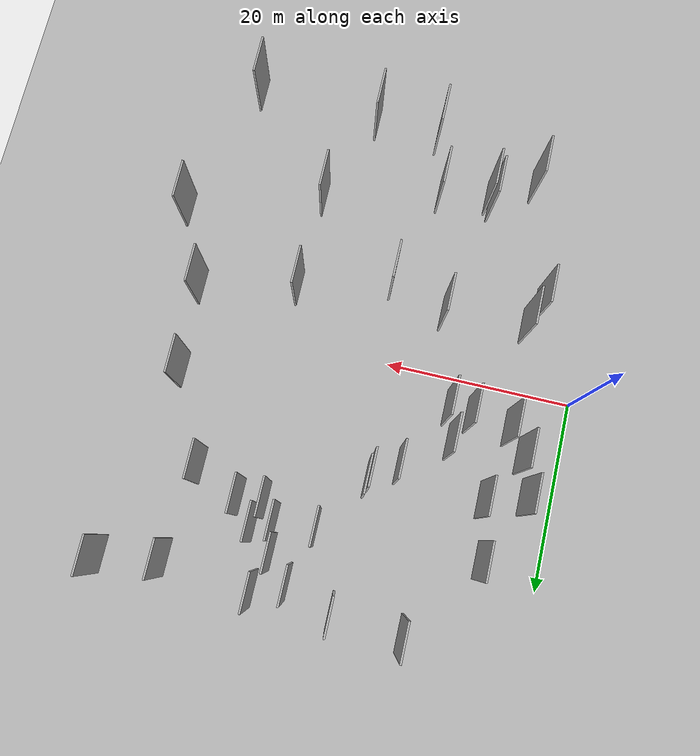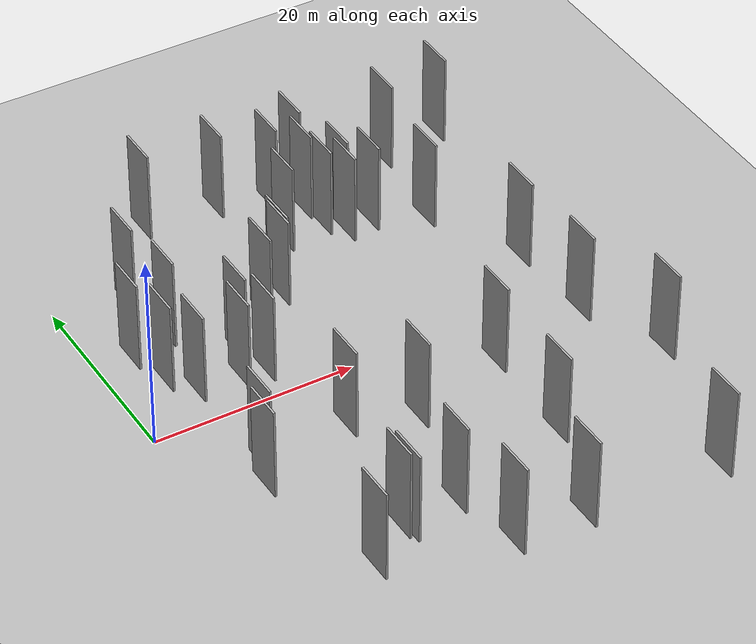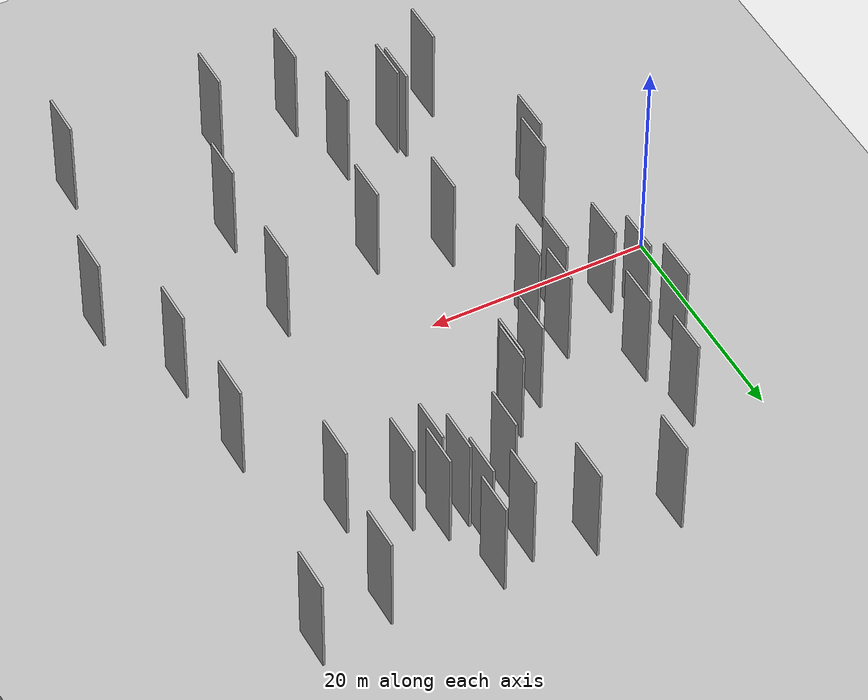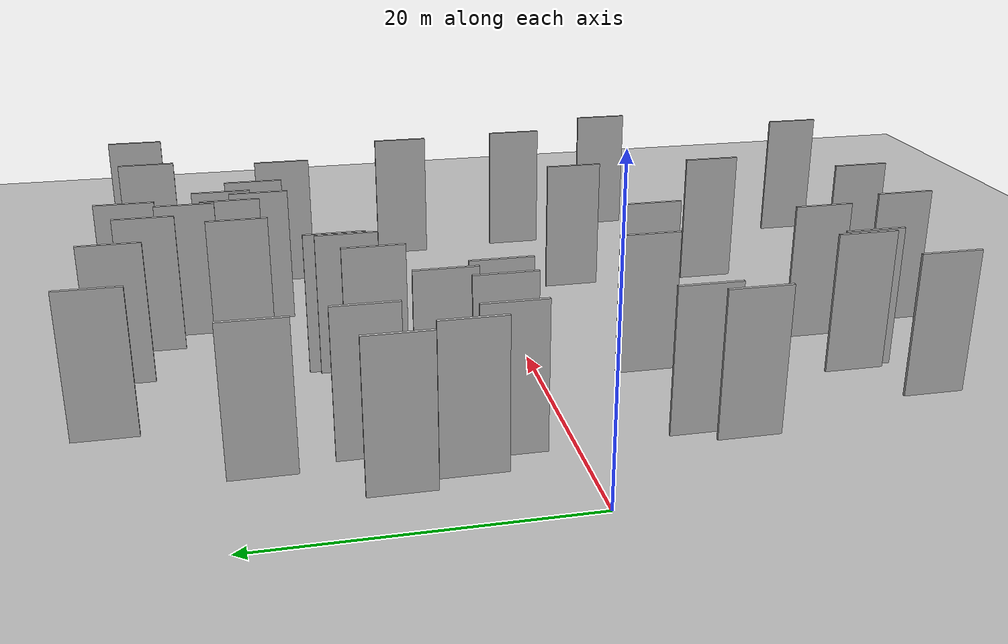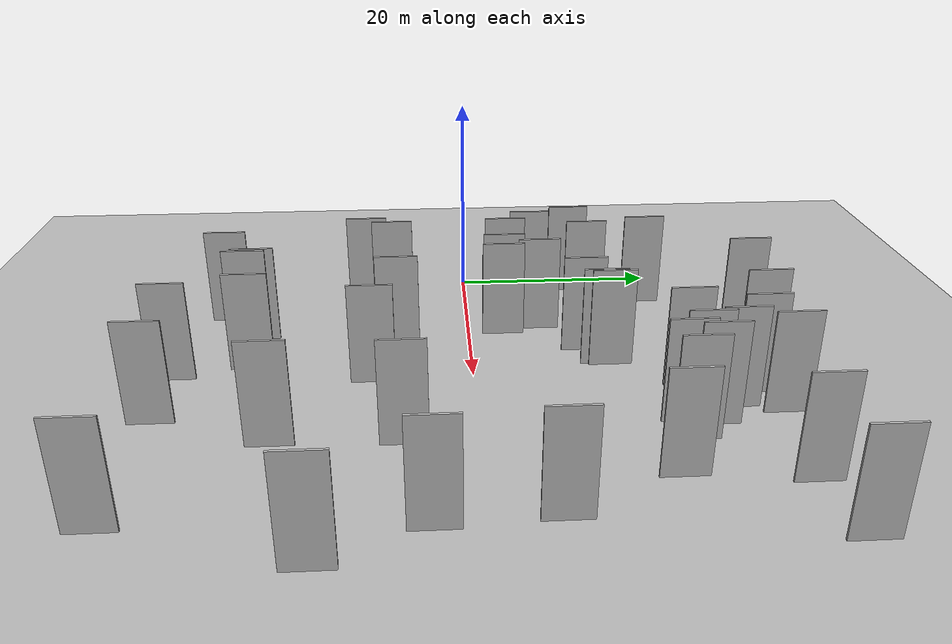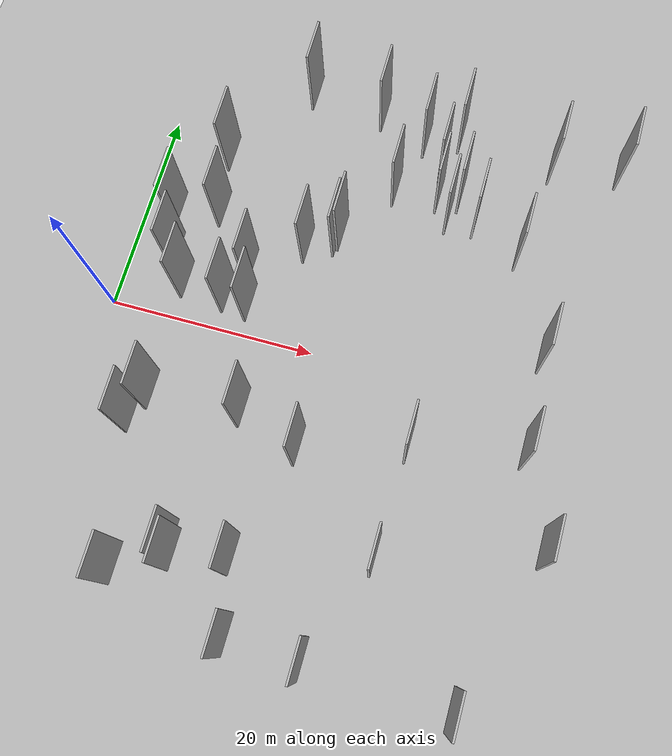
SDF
<?xml version="1.0" encoding="utf-8"?>

<sdf version="1.6">

   <world name="default">

      <gui fullscreen="0">

         <camera name="user_camera">

            <pose>-15 0 4.57585 0 0 0</pose>

            <view_controller>orbit</view_controller>

         </camera>

      </gui>

      <scene>

         <sky>

           <clouds>

             <speed>12</speed>

           </clouds>

         </sky>

         <ambient>0.4 0.4 0.4 1</ambient>

         <background>0.7 0.7 0.7 1</background>

         <shadows>1</shadows>

      </scene>

      <gravity>0 0 -9.8066</gravity>

      <magnetic_field>6e-06 2.3e-05 -4.2e-05</magnetic_field>

      <physics default="0" name="default_physics" type="ode">

         <ode>

            <solver>

               <type>quick</type>

               <iters>10</iters>

               <sor>1.0</sor>

               <use_dynamic_moi_rescaling>0</use_dynamic_moi_rescaling>

            </solver>

            <constraints>

               <cfm>0</cfm>

               <erp>0.2</erp>

               <contact_max_correcting_vel>100</contact_max_correcting_vel>

               <contact_surface_layer>0.001</contact_surface_layer>

            </constraints>

         </ode>

         <max_step_size>0.004</max_step_size>

         <real_time_factor>1</real_time_factor>

         <real_time_update_rate>250</real_time_update_rate>

      </physics>

      <light name="sun" type="directional">

         <cast_shadows>1</cast_shadows>

         <pose>0 0 10 0 0 0</pose>

         <diffuse>0.8 0.8 0.8 1</diffuse>

         <specular>0.2 0.2 0.2 1</specular>

         <attenuation>

            <range>1000</range>

            <constant>0.9</constant>

            <linear>0.01</linear>

            <quadratic>0.001</quadratic>

         </attenuation>

         <direction>-0.5 0.1 -0.9</direction>

      </light>

      <include>

         <name>ground_plane_1</name>

         <uri>model://HANNAS_ground_plane</uri>

         <pose>0 0 0  0 0 0</pose>

      </include>

      <include>

         <name>ground_plane_2</name>

         <uri>model://HANNAS_ground_plane</uri>

         <pose>100 0 0  0 0 0</pose>

      </include>

      <model name="HANNAS_wall_1">

         <static>1</static>

         <pose frame="">27.8386 19.0974 0.0 0.000000 0.000000 1.570796</pose>

         <link name="link">

            <pose frame="">0 0 5.00 0 0 0</pose>

            <collision name="collision">

               <geometry>

                  <box>

                     <size>4.00 0.2 10.00</size>

                  </box>

               </geometry>

               <max_contacts>10</max_contacts>

               <surface>

                  <contact>

                     <ode/>

                  </contact>

                  <bounce/>

                  <friction>

                     <torsional>

                        <ode/>

                     </torsional>

                     <ode/>

                  </friction>

               </surface>

            </collision>

            <visual name="visual">

               <cast_shadows>0</cast_shadows>

               <geometry>

                  <box>

                     <size>4.00 0.2 10.00</size>

                  </box>

               </geometry>

               <material>

                  <script>

                     <uri>model://HANNAS_wall/materials/scripts</uri>

                     <uri>model://HANNAS_wall/materials/textures</uri>

                     <name>vrc/HANNAS_wall</name>

                  </script>

               </material>

            </visual>

            <self_collide>0</self_collide>

            <enable_wind>0</enable_wind>

            <kinematic>0</kinematic>

         </link>

      </model>

      <model name="HANNAS_wall_2">

         <static>1</static>

         <pose frame="">31.9971 17.4244 0.0 0.000000 0.000000 1.570796</pose>

         <link name="link">

            <pose frame="">0 0 5.00 0 0 0</pose>

            <collision name="collision">

               <geometry>

                  <box>

                     <size>4.00 0.2 10.00</size>

                  </box>

               </geometry>

               <max_contacts>10</max_contacts>

               <surface>

                  <contact>

                     <ode/>

                  </contact>

                  <bounce/>

                  <friction>

                     <torsional>

                        <ode/>

                     </torsional>

                     <ode/>

                  </friction>

               </surface>

            </collision>

            <visual name="visual">

               <cast_shadows>0</cast_shadows>

               <geometry>

                  <box>

                     <size>4.00 0.2 10.00</size>

                  </box>

               </geometry>

               <material>

                  <script>

                     <uri>model://HANNAS_wall/materials/scripts</uri>

                     <uri>model://HANNAS_wall/materials/textures</uri>

                     <name>vrc/HANNAS_wall</name>

                  </script>

               </material>

            </visual>

            <self_collide>0</self_collide>

            <enable_wind>0</enable_wind>

            <kinematic>0</kinematic>

         </link>

      </model>

      <model name="HANNAS_wall_3">

         <static>1</static>

         <pose frame="">6.2617 3.9790 0.0 0.000000 0.000000 1.570796</pose>

         <link name="link">

            <pose frame="">0 0 5.00 0 0 0</pose>

            <collision name="collision">

               <geometry>

                  <box>

                     <size>4.00 0.2 10.00</size>

                  </box>

               </geometry>

               <max_contacts>10</max_contacts>

               <surface>

                  <contact>

                     <ode/>

                  </contact>

                  <bounce/>

                  <friction>

                     <torsional>

                        <ode/>

                     </torsional>

                     <ode/>

                  </friction>

               </surface>

            </collision>

            <visual name="visual">

               <cast_shadows>0</cast_shadows>

               <geometry>

                  <box>

                     <size>4.00 0.2 10.00</size>

                  </box>

               </geometry>

               <material>

                  <script>

                     <uri>model://HANNAS_wall/materials/scripts</uri>

                     <uri>model://HANNAS_wall/materials/textures</uri>

                     <name>vrc/HANNAS_wall</name>

                  </script>

               </material>

            </visual>

            <self_collide>0</self_collide>

            <enable_wind>0</enable_wind>

            <kinematic>0</kinematic>

         </link>

      </model>

      <model name="HANNAS_wall_4">

         <static>1</static>

         <pose frame="">7.5539 12.0674 0.0 0.000000 0.000000 1.570796</pose>

         <link name="link">

            <pose frame="">0 0 5.00 0 0 0</pose>

            <collision name="collision">

               <geometry>

                  <box>

                     <size>4.00 0.2 10.00</size>

                  </box>

               </geometry>

               <max_contacts>10</max_contacts>

               <surface>

                  <contact>

                     <ode/>

                  </contact>

                  <bounce/>

                  <friction>

                     <torsional>

                        <ode/>

                     </torsional>

                     <ode/>

                  </friction>

               </surface>

            </collision>

            <visual name="visual">

               <cast_shadows>0</cast_shadows>

               <geometry>

                  <box>

                     <size>4.00 0.2 10.00</size>

                  </box>

               </geometry>

               <material>

                  <script>

                     <uri>model://HANNAS_wall/materials/scripts</uri>

                     <uri>model://HANNAS_wall/materials/textures</uri>

                     <name>vrc/HANNAS_wall</name>

                  </script>

               </material>

            </visual>

            <self_collide>0</self_collide>

            <enable_wind>0</enable_wind>

            <kinematic>0</kinematic>

         </link>

      </model>

      <model name="HANNAS_wall_5">

         <static>1</static>

         <pose frame="">16.6574 10.5608 0.0 0.000000 0.000000 1.570796</pose>

         <link name="link">

            <pose frame="">0 0 5.00 0 0 0</pose>

            <collision name="collision">

               <geometry>

                  <box>

                     <size>4.00 0.2 10.00</size>

                  </box>

               </geometry>

               <max_contacts>10</max_contacts>

               <surface>

                  <contact>

                     <ode/>

                  </contact>

                  <bounce/>

                  <friction>

                     <torsional>

                        <ode/>

                     </torsional>

                     <ode/>

                  </friction>

               </surface>

            </collision>

            <visual name="visual">

               <cast_shadows>0</cast_shadows>

               <geometry>

                  <box>

                     <size>4.00 0.2 10.00</size>

                  </box>

               </geometry>

               <material>

                  <script>

                     <uri>model://HANNAS_wall/materials/scripts</uri>

                     <uri>model://HANNAS_wall/materials/textures</uri>

                     <name>vrc/HANNAS_wall</name>

                  </script>

               </material>

            </visual>

            <self_collide>0</self_collide>

            <enable_wind>0</enable_wind>

            <kinematic>0</kinematic>

         </link>

      </model>

      <model name="HANNAS_wall_6">

         <static>1</static>

         <pose frame="">40.6920 -27.8204 0.0 0.000000 0.000000 1.570796</pose>

         <link name="link">

            <pose frame="">0 0 5.00 0 0 0</pose>

            <collision name="collision">

               <geometry>

                  <box>

                     <size>4.00 0.2 10.00</size>

                  </box>

               </geometry>

               <max_contacts>10</max_contacts>

               <surface>

                  <contact>

                     <ode/>

                  </contact>

                  <bounce/>

                  <friction>

                     <torsional>

                        <ode/>

                     </torsional>

                     <ode/>

                  </friction>

               </surface>

            </collision>

            <visual name="visual">

               <cast_shadows>0</cast_shadows>

               <geometry>

                  <box>

                     <size>4.00 0.2 10.00</size>

                  </box>

               </geometry>

               <material>

                  <script>

                     <uri>model://HANNAS_wall/materials/scripts</uri>

                     <uri>model://HANNAS_wall/materials/textures</uri>

                     <name>vrc/HANNAS_wall</name>

                  </script>

               </material>

            </visual>

            <self_collide>0</self_collide>

            <enable_wind>0</enable_wind>

            <kinematic>0</kinematic>

         </link>

      </model>

      <model name="HANNAS_wall_7">

         <static>1</static>

         <pose frame="">21.4658 -9.0196 0.0 0.000000 0.000000 1.570796</pose>

         <link name="link">

            <pose frame="">0 0 5.00 0 0 0</pose>

            <collision name="collision">

               <geometry>

                  <box>

                     <size>4.00 0.2 10.00</size>

                  </box>

               </geometry>

               <max_contacts>10</max_contacts>

               <surface>

                  <contact>

                     <ode/>

                  </contact>

                  <bounce/>

                  <friction>

                     <torsional>

                        <ode/>

                     </torsional>

                     <ode/>

                  </friction>

               </surface>

            </collision>

            <visual name="visual">

               <cast_shadows>0</cast_shadows>

               <geometry>

                  <box>

                     <size>4.00 0.2 10.00</size>

                  </box>

               </geometry>

               <material>

                  <script>

                     <uri>model://HANNAS_wall/materials/scripts</uri>

                     <uri>model://HANNAS_wall/materials/textures</uri>

                     <name>vrc/HANNAS_wall</name>

                  </script>

               </material>

            </visual>

            <self_collide>0</self_collide>

            <enable_wind>0</enable_wind>

            <kinematic>0</kinematic>

         </link>

      </model>

      <model name="HANNAS_wall_8">

         <static>1</static>

         <pose frame="">36.7858 15.1827 0.0 0.000000 0.000000 1.570796</pose>

         <link name="link">

            <pose frame="">0 0 5.00 0 0 0</pose>

            <collision name="collision">

               <geometry>

                  <box>

                     <size>4.00 0.2 10.00</size>

                  </box>

               </geometry>

               <max_contacts>10</max_contacts>

               <surface>

                  <contact>

                     <ode/>

                  </contact>

                  <bounce/>

                  <friction>

                     <torsional>

                        <ode/>

                     </torsional>

                     <ode/>

                  </friction>

               </surface>

            </collision>

            <visual name="visual">

               <cast_shadows>0</cast_shadows>

               <geometry>

                  <box>

                     <size>4.00 0.2 10.00</size>

                  </box>

               </geometry>

               <material>

                  <script>

                     <uri>model://HANNAS_wall/materials/scripts</uri>

                     <uri>model://HANNAS_wall/materials/textures</uri>

                     <name>vrc/HANNAS_wall</name>

                  </script>

               </material>

            </visual>

            <self_collide>0</self_collide>

            <enable_wind>0</enable_wind>

            <kinematic>0</kinematic>

         </link>

      </model>

      <model name="HANNAS_wall_9">

         <static>1</static>

         <pose frame="">31.3133 -6.1245 0.0 0.000000 0.000000 1.570796</pose>

         <link name="link">

            <pose frame="">0 0 5.00 0 0 0</pose>

            <collision name="collision">

               <geometry>

                  <box>

                     <size>4.00 0.2 10.00</size>

                  </box>

               </geometry>

               <max_contacts>10</max_contacts>

               <surface>

                  <contact>

                     <ode/>

                  </contact>

                  <bounce/>

                  <friction>

                     <torsional>

                        <ode/>

                     </torsional>

                     <ode/>

                  </friction>

               </surface>

            </collision>

            <visual name="visual">

               <cast_shadows>0</cast_shadows>

               <geometry>

                  <box>

                     <size>4.00 0.2 10.00</size>

                  </box>

               </geometry>

               <material>

                  <script>

                     <uri>model://HANNAS_wall/materials/scripts</uri>

                     <uri>model://HANNAS_wall/materials/textures</uri>

                     <name>vrc/HANNAS_wall</name>

                  </script>

               </material>

            </visual>

            <self_collide>0</self_collide>

            <enable_wind>0</enable_wind>

            <kinematic>0</kinematic>

         </link>

      </model>

      <model name="HANNAS_wall_10">

         <static>1</static>

         <pose frame="">13.2317 -21.1327 0.0 0.000000 0.000000 1.570796</pose>

         <link name="link">

            <pose frame="">0 0 5.00 0 0 0</pose>

            <collision name="collision">

               <geometry>

                  <box>

                     <size>4.00 0.2 10.00</size>

                  </box>

               </geometry>

               <max_contacts>10</max_contacts>

               <surface>

                  <contact>

                     <ode/>

                  </contact>

                  <bounce/>

                  <friction>

                     <torsional>

                        <ode/>

                     </torsional>

                     <ode/>

                  </friction>

               </surface>

            </collision>

            <visual name="visual">

               <cast_shadows>0</cast_shadows>

               <geometry>

                  <box>

                     <size>4.00 0.2 10.00</size>

                  </box>

               </geometry>

               <material>

                  <script>

                     <uri>model://HANNAS_wall/materials/scripts</uri>

                     <uri>model://HANNAS_wall/materials/textures</uri>

                     <name>vrc/HANNAS_wall</name>

                  </script>

               </material>

            </visual>

            <self_collide>0</self_collide>

            <enable_wind>0</enable_wind>

            <kinematic>0</kinematic>

         </link>

      </model>

      <model name="HANNAS_wall_11">

         <static>1</static>

         <pose frame="">12.0053 6.8446 0.0 0.000000 0.000000 1.570796</pose>

         <link name="link">

            <pose frame="">0 0 5.00 0 0 0</pose>

            <collision name="collision">

               <geometry>

                  <box>

                     <size>4.00 0.2 10.00</size>

                  </box>

               </geometry>

               <max_contacts>10</max_contacts>

               <surface>

                  <contact>

                     <ode/>

                  </contact>

                  <bounce/>

                  <friction>

                     <torsional>

                        <ode/>

                     </torsional>

                     <ode/>

                  </friction>

               </surface>

            </collision>

            <visual name="visual">

               <cast_shadows>0</cast_shadows>

               <geometry>

                  <box>

                     <size>4.00 0.2 10.00</size>

                  </box>

               </geometry>

               <material>

                  <script>

                     <uri>model://HANNAS_wall/materials/scripts</uri>

                     <uri>model://HANNAS_wall/materials/textures</uri>

                     <name>vrc/HANNAS_wall</name>

                  </script>

               </material>

            </visual>

            <self_collide>0</self_collide>

            <enable_wind>0</enable_wind>

            <kinematic>0</kinematic>

         </link>

      </model>

      <model name="HANNAS_wall_12">

         <static>1</static>

         <pose frame="">28.4717 26.1268 0.0 0.000000 0.000000 1.570796</pose>

         <link name="link">

            <pose frame="">0 0 5.00 0 0 0</pose>

            <collision name="collision">

               <geometry>

                  <box>

                     <size>4.00 0.2 10.00</size>

                  </box>

               </geometry>

               <max_contacts>10</max_contacts>

               <surface>

                  <contact>

                     <ode/>

                  </contact>

                  <bounce/>

                  <friction>

                     <torsional>

                        <ode/>

                     </torsional>

                     <ode/>

                  </friction>

               </surface>

            </collision>

            <visual name="visual">

               <cast_shadows>0</cast_shadows>

               <geometry>

                  <box>

                     <size>4.00 0.2 10.00</size>

                  </box>

               </geometry>

               <material>

                  <script>

                     <uri>model://HANNAS_wall/materials/scripts</uri>

                     <uri>model://HANNAS_wall/materials/textures</uri>

                     <name>vrc/HANNAS_wall</name>

                  </script>

               </material>

            </visual>

            <self_collide>0</self_collide>

            <enable_wind>0</enable_wind>

            <kinematic>0</kinematic>

         </link>

      </model>

      <model name="HANNAS_wall_13">

         <static>1</static>

         <pose frame="">25.1381 24.7021 0.0 0.000000 0.000000 1.570796</pose>

         <link name="link">

            <pose frame="">0 0 5.00 0 0 0</pose>

            <collision name="collision">

               <geometry>

                  <box>

                     <size>4.00 0.2 10.00</size>

                  </box>

               </geometry>

               <max_contacts>10</max_contacts>

               <surface>

                  <contact>

                     <ode/>

                  </contact>

                  <bounce/>

                  <friction>

                     <torsional>

                        <ode/>

                     </torsional>

                     <ode/>

                  </friction>

               </surface>

            </collision>

            <visual name="visual">

               <cast_shadows>0</cast_shadows>

               <geometry>

                  <box>

                     <size>4.00 0.2 10.00</size>

                  </box>

               </geometry>

               <material>

                  <script>

                     <uri>model://HANNAS_wall/materials/scripts</uri>

                     <uri>model://HANNAS_wall/materials/textures</uri>

                     <name>vrc/HANNAS_wall</name>

                  </script>

               </material>

            </visual>

            <self_collide>0</self_collide>

            <enable_wind>0</enable_wind>

            <kinematic>0</kinematic>

         </link>

      </model>

      <model name="HANNAS_wall_14">

         <static>1</static>

         <pose frame="">12.9309 3.3106 0.0 0.000000 0.000000 1.570796</pose>

         <link name="link">

            <pose frame="">0 0 5.00 0 0 0</pose>

            <collision name="collision">

               <geometry>

                  <box>

                     <size>4.00 0.2 10.00</size>

                  </box>

               </geometry>

               <max_contacts>10</max_contacts>

               <surface>

                  <contact>

                     <ode/>

                  </contact>

                  <bounce/>

                  <friction>

                     <torsional>

                        <ode/>

                     </torsional>

                     <ode/>

                  </friction>

               </surface>

            </collision>

            <visual name="visual">

               <cast_shadows>0</cast_shadows>

               <geometry>

                  <box>

                     <size>4.00 0.2 10.00</size>

                  </box>

               </geometry>

               <material>

                  <script>

                     <uri>model://HANNAS_wall/materials/scripts</uri>

                     <uri>model://HANNAS_wall/materials/textures</uri>

                     <name>vrc/HANNAS_wall</name>

                  </script>

               </material>

            </visual>

            <self_collide>0</self_collide>

            <enable_wind>0</enable_wind>

            <kinematic>0</kinematic>

         </link>

      </model>

      <model name="HANNAS_wall_15">

         <static>1</static>

         <pose frame="">6.6121 18.1727 0.0 0.000000 0.000000 1.570796</pose>

         <link name="link">

            <pose frame="">0 0 5.00 0 0 0</pose>

            <collision name="collision">

               <geometry>

                  <box>

                     <size>4.00 0.2 10.00</size>

                  </box>

               </geometry>

               <max_contacts>10</max_contacts>

               <surface>

                  <contact>

                     <ode/>

                  </contact>

                  <bounce/>

                  <friction>

                     <torsional>

                        <ode/>

                     </torsional>

                     <ode/>

                  </friction>

               </surface>

            </collision>

            <visual name="visual">

               <cast_shadows>0</cast_shadows>

               <geometry>

                  <box>

                     <size>4.00 0.2 10.00</size>

                  </box>

               </geometry>

               <material>

                  <script>

                     <uri>model://HANNAS_wall/materials/scripts</uri>

                     <uri>model://HANNAS_wall/materials/textures</uri>

                     <name>vrc/HANNAS_wall</name>

                  </script>

               </material>

            </visual>

            <self_collide>0</self_collide>

            <enable_wind>0</enable_wind>

            <kinematic>0</kinematic>

         </link>

      </model>

      <model name="HANNAS_wall_16">

         <static>1</static>

         <pose frame="">10.5438 3.5574 0.0 0.000000 0.000000 1.570796</pose>

         <link name="link">

            <pose frame="">0 0 5.00 0 0 0</pose>

            <collision name="collision">

               <geometry>

                  <box>

                     <size>4.00 0.2 10.00</size>

                  </box>

               </geometry>

               <max_contacts>10</max_contacts>

               <surface>

                  <contact>

                     <ode/>

                  </contact>

                  <bounce/>

                  <friction>

                     <torsional>

                        <ode/>

                     </torsional>

                     <ode/>

                  </friction>

               </surface>

            </collision>

            <visual name="visual">

               <cast_shadows>0</cast_shadows>

               <geometry>

                  <box>

                     <size>4.00 0.2 10.00</size>

                  </box>

               </geometry>

               <material>

                  <script>

                     <uri>model://HANNAS_wall/materials/scripts</uri>

                     <uri>model://HANNAS_wall/materials/textures</uri>

                     <name>vrc/HANNAS_wall</name>

                  </script>

               </material>

            </visual>

            <self_collide>0</self_collide>

            <enable_wind>0</enable_wind>

            <kinematic>0</kinematic>

         </link>

      </model>

      <model name="HANNAS_wall_17">

         <static>1</static>

         <pose frame="">37.9804 25.1454 0.0 0.000000 0.000000 1.570796</pose>

         <link name="link">

            <pose frame="">0 0 5.00 0 0 0</pose>

            <collision name="collision">

               <geometry>

                  <box>

                     <size>4.00 0.2 10.00</size>

                  </box>

               </geometry>

               <max_contacts>10</max_contacts>

               <surface>

                  <contact>

                     <ode/>

                  </contact>

                  <bounce/>

                  <friction>

                     <torsional>

                        <ode/>

                     </torsional>

                     <ode/>

                  </friction>

               </surface>

            </collision>

            <visual name="visual">

               <cast_shadows>0</cast_shadows>

               <geometry>

                  <box>

                     <size>4.00 0.2 10.00</size>

                  </box>

               </geometry>

               <material>

                  <script>

                     <uri>model://HANNAS_wall/materials/scripts</uri>

                     <uri>model://HANNAS_wall/materials/textures</uri>

                     <name>vrc/HANNAS_wall</name>

                  </script>

               </material>

            </visual>

            <self_collide>0</self_collide>

            <enable_wind>0</enable_wind>

            <kinematic>0</kinematic>

         </link>

      </model>

      <model name="HANNAS_wall_18">

         <static>1</static>

         <pose frame="">30.9320 -16.8764 0.0 0.000000 0.000000 1.570796</pose>

         <link name="link">

            <pose frame="">0 0 5.00 0 0 0</pose>

            <collision name="collision">

               <geometry>

                  <box>

                     <size>4.00 0.2 10.00</size>

                  </box>

               </geometry>

               <max_contacts>10</max_contacts>

               <surface>

                  <contact>

                     <ode/>

                  </contact>

                  <bounce/>

                  <friction>

                     <torsional>

                        <ode/>

                     </torsional>

                     <ode/>

                  </friction>

               </surface>

            </collision>

            <visual name="visual">

               <cast_shadows>0</cast_shadows>

               <geometry>

                  <box>

                     <size>4.00 0.2 10.00</size>

                  </box>

               </geometry>

               <material>

                  <script>

                     <uri>model://HANNAS_wall/materials/scripts</uri>

                     <uri>model://HANNAS_wall/materials/textures</uri>

                     <name>vrc/HANNAS_wall</name>

                  </script>

               </material>

            </visual>

            <self_collide>0</self_collide>

            <enable_wind>0</enable_wind>

            <kinematic>0</kinematic>

         </link>

      </model>

      <model name="HANNAS_wall_19">

         <static>1</static>

         <pose frame="">6.5469 -7.4695 0.0 0.000000 0.000000 1.570796</pose>

         <link name="link">

            <pose frame="">0 0 5.00 0 0 0</pose>

            <collision name="collision">

               <geometry>

                  <box>

                     <size>4.00 0.2 10.00</size>

                  </box>

               </geometry>

               <max_contacts>10</max_contacts>

               <surface>

                  <contact>

                     <ode/>

                  </contact>

                  <bounce/>

                  <friction>

                     <torsional>

                        <ode/>

                     </torsional>

                     <ode/>

                  </friction>

               </surface>

            </collision>

            <visual name="visual">

               <cast_shadows>0</cast_shadows>

               <geometry>

                  <box>

                     <size>4.00 0.2 10.00</size>

                  </box>

               </geometry>

               <material>

                  <script>

                     <uri>model://HANNAS_wall/materials/scripts</uri>

                     <uri>model://HANNAS_wall/materials/textures</uri>

                     <name>vrc/HANNAS_wall</name>

                  </script>

               </material>

            </visual>

            <self_collide>0</self_collide>

            <enable_wind>0</enable_wind>

            <kinematic>0</kinematic>

         </link>

      </model>

      <model name="HANNAS_wall_20">

         <static>1</static>

         <pose frame="">45.3278 -12.3080 0.0 0.000000 0.000000 1.570796</pose>

         <link name="link">

            <pose frame="">0 0 5.00 0 0 0</pose>

            <collision name="collision">

               <geometry>

                  <box>

                     <size>4.00 0.2 10.00</size>

                  </box>

               </geometry>

               <max_contacts>10</max_contacts>

               <surface>

                  <contact>

                     <ode/>

                  </contact>

                  <bounce/>

                  <friction>

                     <torsional>

                        <ode/>

                     </torsional>

                     <ode/>

                  </friction>

               </surface>

            </collision>

            <visual name="visual">

               <cast_shadows>0</cast_shadows>

               <geometry>

                  <box>

                     <size>4.00 0.2 10.00</size>

                  </box>

               </geometry>

               <material>

                  <script>

                     <uri>model://HANNAS_wall/materials/scripts</uri>

                     <uri>model://HANNAS_wall/materials/textures</uri>

                     <name>vrc/HANNAS_wall</name>

                  </script>

               </material>

            </visual>

            <self_collide>0</self_collide>

            <enable_wind>0</enable_wind>

            <kinematic>0</kinematic>

         </link>

      </model>

      <model name="HANNAS_wall_21">

         <static>1</static>

         <pose frame="">12.7828 -20.3886 0.0 0.000000 0.000000 1.570796</pose>

         <link name="link">

            <pose frame="">0 0 5.00 0 0 0</pose>

            <collision name="collision">

               <geometry>

                  <box>

                     <size>4.00 0.2 10.00</size>

                  </box>

               </geometry>

               <max_contacts>10</max_contacts>

               <surface>

                  <contact>

                     <ode/>

                  </contact>

                  <bounce/>

                  <friction>

                     <torsional>

                        <ode/>

                     </torsional>

                     <ode/>

                  </friction>

               </surface>

            </collision>

            <visual name="visual">

               <cast_shadows>0</cast_shadows>

               <geometry>

                  <box>

                     <size>4.00 0.2 10.00</size>

                  </box>

               </geometry>

               <material>

                  <script>

                     <uri>model://HANNAS_wall/materials/scripts</uri>

                     <uri>model://HANNAS_wall/materials/textures</uri>

                     <name>vrc/HANNAS_wall</name>

                  </script>

               </material>

            </visual>

            <self_collide>0</self_collide>

            <enable_wind>0</enable_wind>

            <kinematic>0</kinematic>

         </link>

      </model>

      <model name="HANNAS_wall_22">

         <static>1</static>

         <pose frame="">41.7728 -3.8706 0.0 0.000000 0.000000 1.570796</pose>

         <link name="link">

            <pose frame="">0 0 5.00 0 0 0</pose>

            <collision name="collision">

               <geometry>

                  <box>

                     <size>4.00 0.2 10.00</size>

                  </box>

               </geometry>

               <max_contacts>10</max_contacts>

               <surface>

                  <contact>

                     <ode/>

                  </contact>

                  <bounce/>

                  <friction>

                     <torsional>

                        <ode/>

                     </torsional>

                     <ode/>

                  </friction>

               </surface>

            </collision>

            <visual name="visual">

               <cast_shadows>0</cast_shadows>

               <geometry>

                  <box>

                     <size>4.00 0.2 10.00</size>

                  </box>

               </geometry>

               <material>

                  <script>

                     <uri>model://HANNAS_wall/materials/scripts</uri>

                     <uri>model://HANNAS_wall/materials/textures</uri>

                     <name>vrc/HANNAS_wall</name>

                  </script>

               </material>

            </visual>

            <self_collide>0</self_collide>

            <enable_wind>0</enable_wind>

            <kinematic>0</kinematic>

         </link>

      </model>

      <model name="HANNAS_wall_23">

         <static>1</static>

         <pose frame="">27.1273 -27.1940 0.0 0.000000 0.000000 1.570796</pose>

         <link name="link">

            <pose frame="">0 0 5.00 0 0 0</pose>

            <collision name="collision">

               <geometry>

                  <box>

                     <size>4.00 0.2 10.00</size>

                  </box>

               </geometry>

               <max_contacts>10</max_contacts>

               <surface>

                  <contact>

                     <ode/>

                  </contact>

                  <bounce/>

                  <friction>

                     <torsional>

                        <ode/>

                     </torsional>

                     <ode/>

                  </friction>

               </surface>

            </collision>

            <visual name="visual">

               <cast_shadows>0</cast_shadows>

               <geometry>

                  <box>

                     <size>4.00 0.2 10.00</size>

                  </box>

               </geometry>

               <material>

                  <script>

                     <uri>model://HANNAS_wall/materials/scripts</uri>

                     <uri>model://HANNAS_wall/materials/textures</uri>

                     <name>vrc/HANNAS_wall</name>

                  </script>

               </material>

            </visual>

            <self_collide>0</self_collide>

            <enable_wind>0</enable_wind>

            <kinematic>0</kinematic>

         </link>

      </model>

      <model name="HANNAS_wall_24">

         <static>1</static>

         <pose frame="">23.5302 18.7064 0.0 0.000000 0.000000 1.570796</pose>

         <link name="link">

            <pose frame="">0 0 5.00 0 0 0</pose>

            <collision name="collision">

               <geometry>

                  <box>

                     <size>4.00 0.2 10.00</size>

                  </box>

               </geometry>

               <max_contacts>10</max_contacts>

               <surface>

                  <contact>

                     <ode/>

                  </contact>

                  <bounce/>

                  <friction>

                     <torsional>

                        <ode/>

                     </torsional>

                     <ode/>

                  </friction>

               </surface>

            </collision>

            <visual name="visual">

               <cast_shadows>0</cast_shadows>

               <geometry>

                  <box>

                     <size>4.00 0.2 10.00</size>

                  </box>

               </geometry>

               <material>

                  <script>

                     <uri>model://HANNAS_wall/materials/scripts</uri>

                     <uri>model://HANNAS_wall/materials/textures</uri>

                     <name>vrc/HANNAS_wall</name>

                  </script>

               </material>

            </visual>

            <self_collide>0</self_collide>

            <enable_wind>0</enable_wind>

            <kinematic>0</kinematic>

         </link>

      </model>

      <model name="HANNAS_wall_25">

         <static>1</static>

         <pose frame="">5.4879 -10.0542 0.0 0.000000 0.000000 1.570796</pose>

         <link name="link">

            <pose frame="">0 0 5.00 0 0 0</pose>

            <collision name="collision">

               <geometry>

                  <box>

                     <size>4.00 0.2 10.00</size>

                  </box>

               </geometry>

               <max_contacts>10</max_contacts>

               <surface>

                  <contact>

                     <ode/>

                  </contact>

                  <bounce/>

                  <friction>

                     <torsional>

                        <ode/>

                     </torsional>

                     <ode/>

                  </friction>

               </surface>

            </collision>

            <visual name="visual">

               <cast_shadows>0</cast_shadows>

               <geometry>

                  <box>

                     <size>4.00 0.2 10.00</size>

                  </box>

               </geometry>

               <material>

                  <script>

                     <uri>model://HANNAS_wall/materials/scripts</uri>

                     <uri>model://HANNAS_wall/materials/textures</uri>

                     <name>vrc/HANNAS_wall</name>

                  </script>

               </material>

            </visual>

            <self_collide>0</self_collide>

            <enable_wind>0</enable_wind>

            <kinematic>0</kinematic>

         </link>

      </model>

      <model name="HANNAS_wall_26">

         <static>1</static>

         <pose frame="">19.5900 12.6999 0.0 0.000000 0.000000 1.570796</pose>

         <link name="link">

            <pose frame="">0 0 5.00 0 0 0</pose>

            <collision name="collision">

               <geometry>

                  <box>

                     <size>4.00 0.2 10.00</size>

                  </box>

               </geometry>

               <max_contacts>10</max_contacts>

               <surface>

                  <contact>

                     <ode/>

                  </contact>

                  <bounce/>

                  <friction>

                     <torsional>

                        <ode/>

                     </torsional>

                     <ode/>

                  </friction>

               </surface>

            </collision>

            <visual name="visual">

               <cast_shadows>0</cast_shadows>

               <geometry>

                  <box>

                     <size>4.00 0.2 10.00</size>

                  </box>

               </geometry>

               <material>

                  <script>

                     <uri>model://HANNAS_wall/materials/scripts</uri>

                     <uri>model://HANNAS_wall/materials/textures</uri>

                     <name>vrc/HANNAS_wall</name>

                  </script>

               </material>

            </visual>

            <self_collide>0</self_collide>

            <enable_wind>0</enable_wind>

            <kinematic>0</kinematic>

         </link>

      </model>

      <model name="HANNAS_wall_27">

         <static>1</static>

         <pose frame="">44.5919 26.3333 0.0 0.000000 0.000000 1.570796</pose>

         <link name="link">

            <pose frame="">0 0 5.00 0 0 0</pose>

            <collision name="collision">

               <geometry>

                  <box>

                     <size>4.00 0.2 10.00</size>

                  </box>

               </geometry>

               <max_contacts>10</max_contacts>

               <surface>

                  <contact>

                     <ode/>

                  </contact>

                  <bounce/>

                  <friction>

                     <torsional>

                        <ode/>

                     </torsional>

                     <ode/>

                  </friction>

               </surface>

            </collision>

            <visual name="visual">

               <cast_shadows>0</cast_shadows>

               <geometry>

                  <box>

                     <size>4.00 0.2 10.00</size>

                  </box>

               </geometry>

               <material>

                  <script>

                     <uri>model://HANNAS_wall/materials/scripts</uri>

                     <uri>model://HANNAS_wall/materials/textures</uri>

                     <name>vrc/HANNAS_wall</name>

                  </script>

               </material>

            </visual>

            <self_collide>0</self_collide>

            <enable_wind>0</enable_wind>

            <kinematic>0</kinematic>

         </link>

      </model>

      <model name="HANNAS_wall_28">

         <static>1</static>

         <pose frame="">29.9393 19.6891 0.0 0.000000 0.000000 1.570796</pose>

         <link name="link">

            <pose frame="">0 0 5.00 0 0 0</pose>

            <collision name="collision">

               <geometry>

                  <box>

                     <size>4.00 0.2 10.00</size>

                  </box>

               </geometry>

               <max_contacts>10</max_contacts>

               <surface>

                  <contact>

                     <ode/>

                  </contact>

                  <bounce/>

                  <friction>

                     <torsional>

                        <ode/>

                     </torsional>

                     <ode/>

                  </friction>

               </surface>

            </collision>

            <visual name="visual">

               <cast_shadows>0</cast_shadows>

               <geometry>

                  <box>

                     <size>4.00 0.2 10.00</size>

                  </box>

               </geometry>

               <material>

                  <script>

                     <uri>model://HANNAS_wall/materials/scripts</uri>

                     <uri>model://HANNAS_wall/materials/textures</uri>

                     <name>vrc/HANNAS_wall</name>

                  </script>

               </material>

            </visual>

            <self_collide>0</self_collide>

            <enable_wind>0</enable_wind>

            <kinematic>0</kinematic>

         </link>

      </model>

      <model name="HANNAS_wall_29">

         <static>1</static>

         <pose frame="">15.4173 -6.8650 0.0 0.000000 0.000000 1.570796</pose>

         <link name="link">

            <pose frame="">0 0 5.00 0 0 0</pose>

            <collision name="collision">

               <geometry>

                  <box>

                     <size>4.00 0.2 10.00</size>

                  </box>

               </geometry>

               <max_contacts>10</max_contacts>

               <surface>

                  <contact>

                     <ode/>

                  </contact>

                  <bounce/>

                  <friction>

                     <torsional>

                        <ode/>

                     </torsional>

                     <ode/>

                  </friction>

               </surface>

            </collision>

            <visual name="visual">

               <cast_shadows>0</cast_shadows>

               <geometry>

                  <box>

                     <size>4.00 0.2 10.00</size>

                  </box>

               </geometry>

               <material>

                  <script>

                     <uri>model://HANNAS_wall/materials/scripts</uri>

                     <uri>model://HANNAS_wall/materials/textures</uri>

                     <name>vrc/HANNAS_wall</name>

                  </script>

               </material>

            </visual>

            <self_collide>0</self_collide>

            <enable_wind>0</enable_wind>

            <kinematic>0</kinematic>

         </link>

      </model>

      <model name="HANNAS_wall_30">

         <static>1</static>

         <pose frame="">12.9044 27.0960 0.0 0.000000 0.000000 1.570796</pose>

         <link name="link">

            <pose frame="">0 0 5.00 0 0 0</pose>

            <collision name="collision">

               <geometry>

                  <box>

                     <size>4.00 0.2 10.00</size>

                  </box>

               </geometry>

               <max_contacts>10</max_contacts>

               <surface>

                  <contact>

                     <ode/>

                  </contact>

                  <bounce/>

                  <friction>

                     <torsional>

                        <ode/>

                     </torsional>

                     <ode/>

                  </friction>

               </surface>

            </collision>

            <visual name="visual">

               <cast_shadows>0</cast_shadows>

               <geometry>

                  <box>

                     <size>4.00 0.2 10.00</size>

                  </box>

               </geometry>

               <material>

                  <script>

                     <uri>model://HANNAS_wall/materials/scripts</uri>

                     <uri>model://HANNAS_wall/materials/textures</uri>

                     <name>vrc/HANNAS_wall</name>

                  </script>

               </material>

            </visual>

            <self_collide>0</self_collide>

            <enable_wind>0</enable_wind>

            <kinematic>0</kinematic>

         </link>

      </model>

      <model name="HANNAS_wall_31">

         <static>1</static>

         <pose frame="">3.3130 10.8329 0.0 0.000000 0.000000 1.570796</pose>

         <link name="link">

            <pose frame="">0 0 5.00 0 0 0</pose>

            <collision name="collision">

               <geometry>

                  <box>

                     <size>4.00 0.2 10.00</size>

                  </box>

               </geometry>

               <max_contacts>10</max_contacts>

               <surface>

                  <contact>

                     <ode/>

                  </contact>

                  <bounce/>

                  <friction>

                     <torsional>

                        <ode/>

                     </torsional>

                     <ode/>

                  </friction>

               </surface>

            </collision>

            <visual name="visual">

               <cast_shadows>0</cast_shadows>

               <geometry>

                  <box>

                     <size>4.00 0.2 10.00</size>

                  </box>

               </geometry>

               <material>

                  <script>

                     <uri>model://HANNAS_wall/materials/scripts</uri>

                     <uri>model://HANNAS_wall/materials/textures</uri>

                     <name>vrc/HANNAS_wall</name>

                  </script>

               </material>

            </visual>

            <self_collide>0</self_collide>

            <enable_wind>0</enable_wind>

            <kinematic>0</kinematic>

         </link>

      </model>

      <model name="HANNAS_wall_32">

         <static>1</static>

         <pose frame="">19.3069 11.9781 0.0 0.000000 0.000000 1.570796</pose>

         <link name="link">

            <pose frame="">0 0 5.00 0 0 0</pose>

            <collision name="collision">

               <geometry>

                  <box>

                     <size>4.00 0.2 10.00</size>

                  </box>

               </geometry>

               <max_contacts>10</max_contacts>

               <surface>

                  <contact>

                     <ode/>

                  </contact>

                  <bounce/>

                  <friction>

                     <torsional>

                        <ode/>

                     </torsional>

                     <ode/>

                  </friction>

               </surface>

            </collision>

            <visual name="visual">

               <cast_shadows>0</cast_shadows>

               <geometry>

                  <box>

                     <size>4.00 0.2 10.00</size>

                  </box>

               </geometry>

               <material>

                  <script>

                     <uri>model://HANNAS_wall/materials/scripts</uri>

                     <uri>model://HANNAS_wall/materials/textures</uri>

                     <name>vrc/HANNAS_wall</name>

                  </script>

               </material>

            </visual>

            <self_collide>0</self_collide>

            <enable_wind>0</enable_wind>

            <kinematic>0</kinematic>

         </link>

      </model>

      <model name="HANNAS_wall_33">

         <static>1</static>

         <pose frame="">8.4909 -23.6566 0.0 0.000000 0.000000 1.570796</pose>

         <link name="link">

            <pose frame="">0 0 5.00 0 0 0</pose>

            <collision name="collision">

               <geometry>

                  <box>

                     <size>4.00 0.2 10.00</size>

                  </box>

               </geometry>

               <max_contacts>10</max_contacts>

               <surface>

                  <contact>

                     <ode/>

                  </contact>

                  <bounce/>

                  <friction>

                     <torsional>

                        <ode/>

                     </torsional>

                     <ode/>

                  </friction>

               </surface>

            </collision>

            <visual name="visual">

               <cast_shadows>0</cast_shadows>

               <geometry>

                  <box>

                     <size>4.00 0.2 10.00</size>

                  </box>

               </geometry>

               <material>

                  <script>

                     <uri>model://HANNAS_wall/materials/scripts</uri>

                     <uri>model://HANNAS_wall/materials/textures</uri>

                     <name>vrc/HANNAS_wall</name>

                  </script>

               </material>

            </visual>

            <self_collide>0</self_collide>

            <enable_wind>0</enable_wind>

            <kinematic>0</kinematic>

         </link>

      </model>

      <model name="HANNAS_wall_34">

         <static>1</static>

         <pose frame="">27.4336 22.1341 0.0 0.000000 0.000000 1.570796</pose>

         <link name="link">

            <pose frame="">0 0 5.00 0 0 0</pose>

            <collision name="collision">

               <geometry>

                  <box>

                     <size>4.00 0.2 10.00</size>

                  </box>

               </geometry>

               <max_contacts>10</max_contacts>

               <surface>

                  <contact>

                     <ode/>

                  </contact>

                  <bounce/>

                  <friction>

                     <torsional>

                        <ode/>

                     </torsional>

                     <ode/>

                  </friction>

               </surface>

            </collision>

            <visual name="visual">

               <cast_shadows>0</cast_shadows>

               <geometry>

                  <box>

                     <size>4.00 0.2 10.00</size>

                  </box>

               </geometry>

               <material>

                  <script>

                     <uri>model://HANNAS_wall/materials/scripts</uri>

                     <uri>model://HANNAS_wall/materials/textures</uri>

                     <name>vrc/HANNAS_wall</name>

                  </script>

               </material>

            </visual>

            <self_collide>0</self_collide>

            <enable_wind>0</enable_wind>

            <kinematic>0</kinematic>

         </link>

      </model>

      <model name="HANNAS_wall_35">

         <static>1</static>

         <pose frame="">29.2707 17.1429 0.0 0.000000 0.000000 1.570796</pose>

         <link name="link">

            <pose frame="">0 0 5.00 0 0 0</pose>

            <collision name="collision">

               <geometry>

                  <box>

                     <size>4.00 0.2 10.00</size>

                  </box>

               </geometry>

               <max_contacts>10</max_contacts>

               <surface>

                  <contact>

                     <ode/>

                  </contact>

                  <bounce/>

                  <friction>

                     <torsional>

                        <ode/>

                     </torsional>

                     <ode/>

                  </friction>

               </surface>

            </collision>

            <visual name="visual">

               <cast_shadows>0</cast_shadows>

               <geometry>

                  <box>

                     <size>4.00 0.2 10.00</size>

                  </box>

               </geometry>

               <material>

                  <script>

                     <uri>model://HANNAS_wall/materials/scripts</uri>

                     <uri>model://HANNAS_wall/materials/textures</uri>

                     <name>vrc/HANNAS_wall</name>

                  </script>

               </material>

            </visual>

            <self_collide>0</self_collide>

            <enable_wind>0</enable_wind>

            <kinematic>0</kinematic>

         </link>

      </model>

      <model name="HANNAS_wall_36">

         <static>1</static>

         <pose frame="">4.4625 6.6379 0.0 0.000000 0.000000 1.570796</pose>

         <link name="link">

            <pose frame="">0 0 5.00 0 0 0</pose>

            <collision name="collision">

               <geometry>

                  <box>

                     <size>4.00 0.2 10.00</size>

                  </box>

               </geometry>

               <max_contacts>10</max_contacts>

               <surface>

                  <contact>

                     <ode/>

                  </contact>

                  <bounce/>

                  <friction>

                     <torsional>

                        <ode/>

                     </torsional>

                     <ode/>

                  </friction>

               </surface>

            </collision>

            <visual name="visual">

               <cast_shadows>0</cast_shadows>

               <geometry>

                  <box>

                     <size>4.00 0.2 10.00</size>

                  </box>

               </geometry>

               <material>

                  <script>

                     <uri>model://HANNAS_wall/materials/scripts</uri>

                     <uri>model://HANNAS_wall/materials/textures</uri>

                     <name>vrc/HANNAS_wall</name>

                  </script>

               </material>

            </visual>

            <self_collide>0</self_collide>

            <enable_wind>0</enable_wind>

            <kinematic>0</kinematic>

         </link>

      </model>

      <model name="HANNAS_wall_37">

         <static>1</static>

         <pose frame="">18.5392 -20.1338 0.0 0.000000 0.000000 1.570796</pose>

         <link name="link">

            <pose frame="">0 0 5.00 0 0 0</pose>

            <collision name="collision">

               <geometry>

                  <box>

                     <size>4.00 0.2 10.00</size>

                  </box>

               </geometry>

               <max_contacts>10</max_contacts>

               <surface>

                  <contact>

                     <ode/>

                  </contact>

                  <bounce/>

                  <friction>

                     <torsional>

                        <ode/>

                     </torsional>

                     <ode/>

                  </friction>

               </surface>

            </collision>

            <visual name="visual">

               <cast_shadows>0</cast_shadows>

               <geometry>

                  <box>

                     <size>4.00 0.2 10.00</size>

                  </box>

               </geometry>

               <material>

                  <script>

                     <uri>model://HANNAS_wall/materials/scripts</uri>

                     <uri>model://HANNAS_wall/materials/textures</uri>

                     <name>vrc/HANNAS_wall</name>

                  </script>

               </material>

            </visual>

            <self_collide>0</self_collide>

            <enable_wind>0</enable_wind>

            <kinematic>0</kinematic>

         </link>

      </model>

      <model name="HANNAS_wall_38">

         <static>1</static>

         <pose frame="">20.2802 26.5003 0.0 0.000000 0.000000 1.570796</pose>

         <link name="link">

            <pose frame="">0 0 5.00 0 0 0</pose>

            <collision name="collision">

               <geometry>

                  <box>

                     <size>4.00 0.2 10.00</size>

                  </box>

               </geometry>

               <max_contacts>10</max_contacts>

               <surface>

                  <contact>

                     <ode/>

                  </contact>

                  <bounce/>

                  <friction>

                     <torsional>

                        <ode/>

                     </torsional>

                     <ode/>

                  </friction>

               </surface>

            </collision>

            <visual name="visual">

               <cast_shadows>0</cast_shadows>

               <geometry>

                  <box>

                     <size>4.00 0.2 10.00</size>

                  </box>

               </geometry>

               <material>

                  <script>

                     <uri>model://HANNAS_wall/materials/scripts</uri>

                     <uri>model://HANNAS_wall/materials/textures</uri>

                     <name>vrc/HANNAS_wall</name>

                  </script>

               </material>

            </visual>

            <self_collide>0</self_collide>

            <enable_wind>0</enable_wind>

            <kinematic>0</kinematic>

         </link>

      </model>

      <model name="HANNAS_wall_39">

         <static>1</static>

         <pose frame="">41.2746 5.5982 0.0 0.000000 0.000000 1.570796</pose>

         <link name="link">

            <pose frame="">0 0 5.00 0 0 0</pose>

            <collision name="collision">

               <geometry>

                  <box>

                     <size>4.00 0.2 10.00</size>

                  </box>

               </geometry>

               <max_contacts>10</max_contacts>

               <surface>

                  <contact>

                     <ode/>

                  </contact>

                  <bounce/>

                  <friction>

                     <torsional>

                        <ode/>

                     </torsional>

                     <ode/>

                  </friction>

               </surface>

            </collision>

            <visual name="visual">

               <cast_shadows>0</cast_shadows>

               <geometry>

                  <box>

                     <size>4.00 0.2 10.00</size>

                  </box>

               </geometry>

               <material>

                  <script>

                     <uri>model://HANNAS_wall/materials/scripts</uri>

                     <uri>model://HANNAS_wall/materials/textures</uri>

                     <name>vrc/HANNAS_wall</name>

                  </script>

               </material>

            </visual>

            <self_collide>0</self_collide>

            <enable_wind>0</enable_wind>

            <kinematic>0</kinematic>

         </link>

      </model>

      <model name="HANNAS_wall_40">

         <static>1</static>

         <pose frame="">20.0816 -26.9500 0.0 0.000000 0.000000 1.570796</pose>

         <link name="link">

            <pose frame="">0 0 5.00 0 0 0</pose>

            <collision name="collision">

               <geometry>

                  <box>

                     <size>4.00 0.2 10.00</size>

                  </box>

               </geometry>

               <max_contacts>10</max_contacts>

               <surface>

                  <contact>

                     <ode/>

                  </contact>

                  <bounce/>

                  <friction>

                     <torsional>

                        <ode/>

                     </torsional>

                     <ode/>

                  </friction>

               </surface>

            </collision>

            <visual name="visual">

               <cast_shadows>0</cast_shadows>

               <geometry>

                  <box>

                     <size>4.00 0.2 10.00</size>

                  </box>

               </geometry>

               <material>

                  <script>

                     <uri>model://HANNAS_wall/materials/scripts</uri>

                     <uri>model://HANNAS_wall/materials/textures</uri>

                     <name>vrc/HANNAS_wall</name>

                  </script>

               </material>

            </visual>

            <self_collide>0</self_collide>

            <enable_wind>0</enable_wind>

            <kinematic>0</kinematic>

         </link>

      </model>

   </world>

</sdf>
